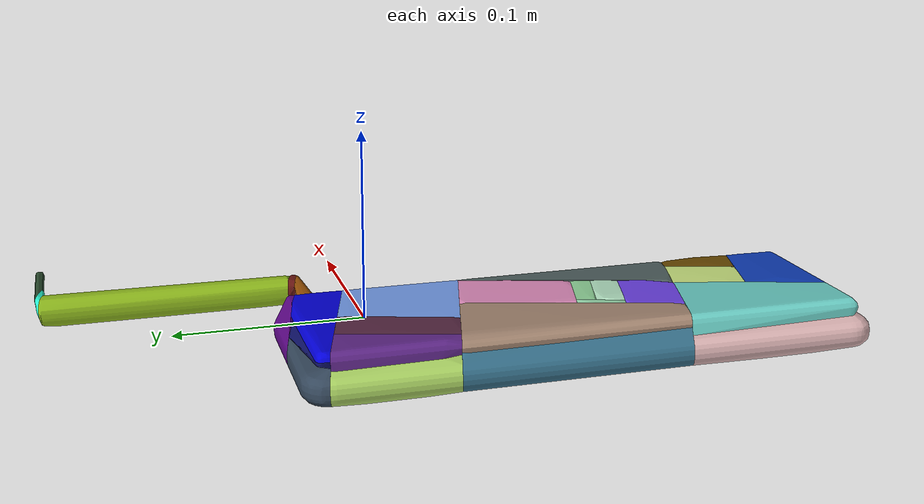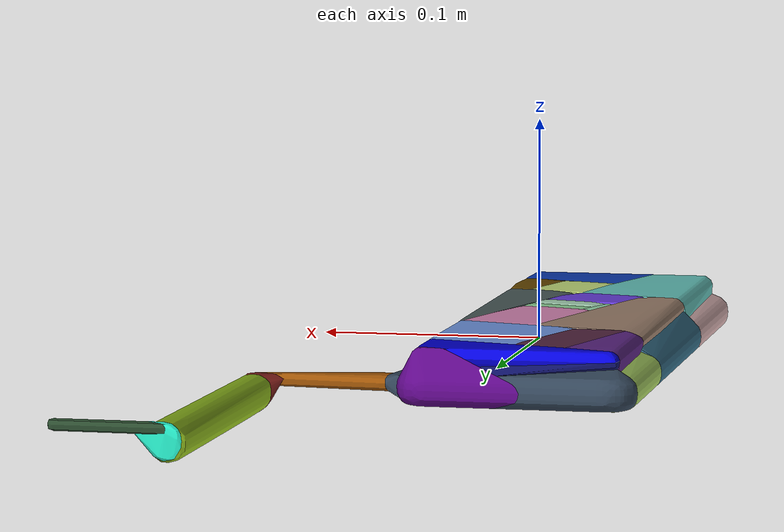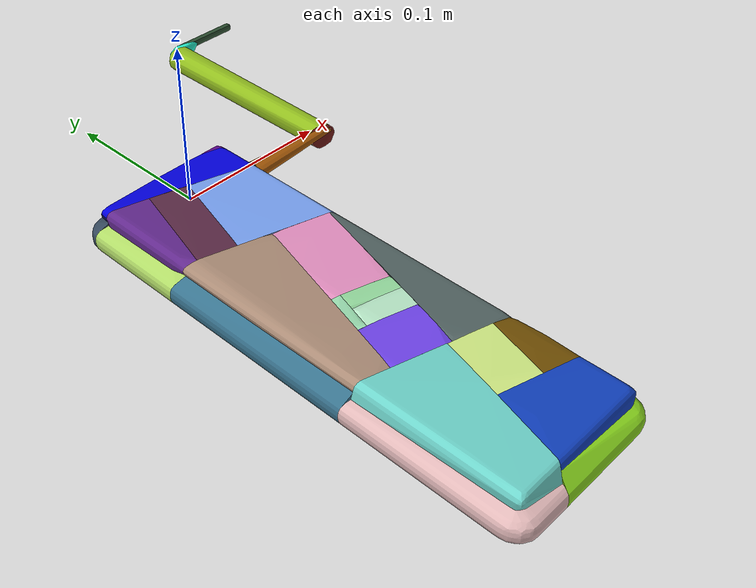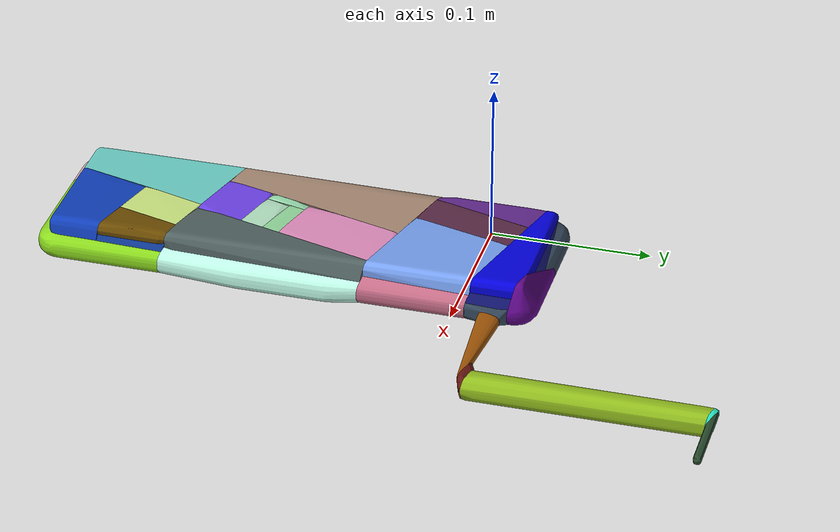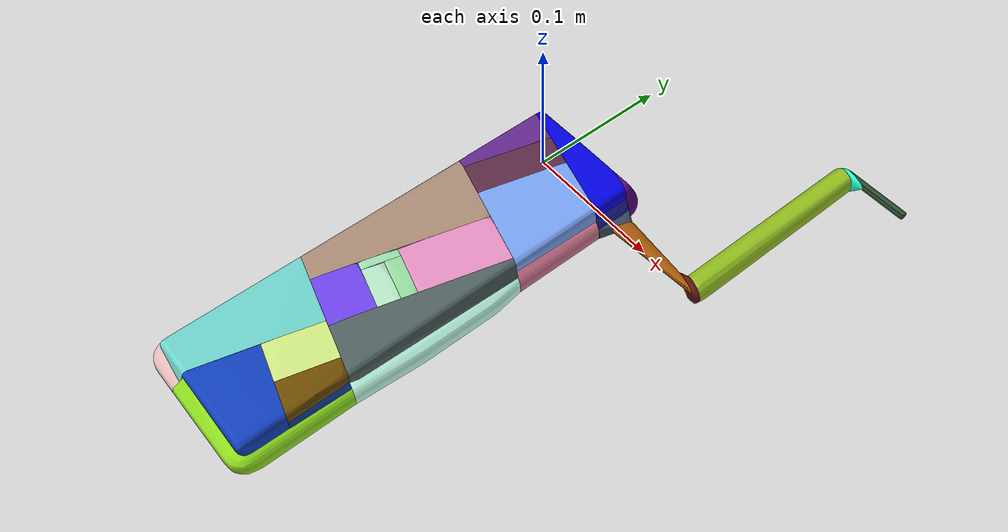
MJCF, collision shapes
<mujoco model="keyboard_1">
  <default>
    <default class="visual">
      <geom group="2" type="mesh" contype="0" conaffinity="0"/>
    </default>
    <default class="collision">
      <geom group="3" type="mesh"/>
    </default>
  </default>
  <asset>
    <material name="BLACK" specular="0.5" shininess="0.25" rgba="0.000000 0.000000 0.000000 1.000000"/>
    <material name="DARKORANGE2" specular="0.5" shininess="0.25" rgba="0.723055 0.201556 0.004777 1.000000"/>
    <material name="GRAY2" specular="0.5" shininess="0.25" rgba="0.001518 0.001518 0.001518 1.000000"/>
    <material name="GRAY38" specular="0.5" shininess="0.25" rgba="0.102242 0.122139 0.132868 1.000000"/>
    <material name="GRAY50" specular="0.5" shininess="0.25" rgba="0.215861 0.215861 0.215861 1.000000"/>
    <material name="GRAY61" specular="0.5" shininess="0.25" rgba="0.327778 0.327778 0.327778 1.000000"/>
    <material name="GRAY94" specular="0.5" shininess="0.25" rgba="0.838799 0.879622 0.863157 1.000000"/>
    <material name="MATRAGRAY" specular="0.5" shininess="0.25" rgba="0.318547 0.318547 0.318547 1.000000"/>
    <material name="WHITESMOKE" specular="0.5" shininess="0.25" rgba="0.904661 0.904661 0.904661 1.000000"/>
    <material name="YELLOW" specular="0.5" shininess="0.25" rgba="1.000000 1.000000 0.000000 1.000000"/>
    <mesh file="keyboard_1_0.obj"/>
    <mesh file="keyboard_1_1.obj"/>
    <mesh file="keyboard_1_2.obj"/>
    <mesh file="keyboard_1_3.obj"/>
    <mesh file="keyboard_1_4.obj"/>
    <mesh file="keyboard_1_5.obj"/>
    <mesh file="keyboard_1_6.obj"/>
    <mesh file="keyboard_1_7.obj"/>
    <mesh file="keyboard_1_8.obj"/>
    <mesh file="keyboard_1_9.obj"/>
    <mesh file="keyboard_1_collision_0.obj"/>
    <mesh file="keyboard_1_collision_1.obj"/>
    <mesh file="keyboard_1_collision_2.obj"/>
    <mesh file="keyboard_1_collision_3.obj"/>
    <mesh file="keyboard_1_collision_4.obj"/>
    <mesh file="keyboard_1_collision_5.obj"/>
    <mesh file="keyboard_1_collision_6.obj"/>
    <mesh file="keyboard_1_collision_7.obj"/>
    <mesh file="keyboard_1_collision_8.obj"/>
    <mesh file="keyboard_1_collision_9.obj"/>
    <mesh file="keyboard_1_collision_10.obj"/>
    <mesh file="keyboard_1_collision_11.obj"/>
    <mesh file="keyboard_1_collision_12.obj"/>
    <mesh file="keyboard_1_collision_13.obj"/>
    <mesh file="keyboard_1_collision_14.obj"/>
    <mesh file="keyboard_1_collision_15.obj"/>
    <mesh file="keyboard_1_collision_16.obj"/>
    <mesh file="keyboard_1_collision_17.obj"/>
    <mesh file="keyboard_1_collision_18.obj"/>
    <mesh file="keyboard_1_collision_19.obj"/>
    <mesh file="keyboard_1_collision_20.obj"/>
    <mesh file="keyboard_1_collision_21.obj"/>
    <mesh file="keyboard_1_collision_22.obj"/>
    <mesh file="keyboard_1_collision_23.obj"/>
    <mesh file="keyboard_1_collision_24.obj"/>
    <mesh file="keyboard_1_collision_25.obj"/>
    <mesh file="keyboard_1_collision_26.obj"/>
    <mesh file="keyboard_1_collision_27.obj"/>
    <mesh file="keyboard_1_collision_28.obj"/>
    <mesh file="keyboard_1_collision_29.obj"/>
    <mesh file="keyboard_1_collision_30.obj"/>
  </asset>
  <worldbody>
    <body name="keyboard_1">
      <geom mesh="keyboard_1_0" material="GRAY50" class="visual"/>
      <geom mesh="keyboard_1_1" material="GRAY2" class="visual"/>
      <geom mesh="keyboard_1_2" material="MATRAGRAY" class="visual"/>
      <geom mesh="keyboard_1_3" material="GRAY61" class="visual"/>
      <geom mesh="keyboard_1_4" material="DARKORANGE2" class="visual"/>
      <geom mesh="keyboard_1_5" material="GRAY94" class="visual"/>
      <geom mesh="keyboard_1_6" material="GRAY38" class="visual"/>
      <geom mesh="keyboard_1_7" material="YELLOW" class="visual"/>
      <geom mesh="keyboard_1_8" material="WHITESMOKE" class="visual"/>
      <geom mesh="keyboard_1_9" material="BLACK" class="visual"/>
      <geom mesh="keyboard_1_collision_0" rgba="0.37025280234571756 0.02541184622643322 0.5371683510211692 1" class="collision"/>
      <geom mesh="keyboard_1_collision_1" rgba="0.15359992214513096 0.9512203453893971 0.8092398641776433 1" class="collision"/>
      <geom mesh="keyboard_1_collision_2" rgba="0.1708922421505047 0.30104228942326283 0.18536506299126387 1" class="collision"/>
      <geom mesh="keyboard_1_collision_3" rgba="0.4096796159999905 0.08915837429298301 0.0742749781525942 1" class="collision"/>
      <geom mesh="keyboard_1_collision_4" rgba="0.63381945224242 0.338828167373711 0.02697345233460746 1" class="collision"/>
      <geom mesh="keyboard_1_collision_5" rgba="0.35528881901693476 0.16575012438670633 0.2734718148015105 1" class="collision"/>
      <geom mesh="keyboard_1_collision_6" rgba="0.876801131554526 0.7168720148763204 0.7174623738195887 1" class="collision"/>
      <geom mesh="keyboard_1_collision_7" rgba="0.05623586971925498 0.06840095557219117 0.41191760865487126 1" class="collision"/>
      <geom mesh="keyboard_1_collision_8" rgba="0.21799614204201956 0.4470577124646403 0.5537768150411897 1" class="collision"/>
      <geom mesh="keyboard_1_collision_9" rgba="0.010845586237483107 0.0018515170579075368 0.8784495422973788 1" class="collision"/>
      <geom mesh="keyboard_1_collision_10" rgba="0.666269762536608 0.5452294846804815 0.46026742964406187 1" class="collision"/>
      <geom mesh="keyboard_1_collision_11" rgba="0.5468240028116772 0.8512557041889841 0.11771991256623382 1" class="collision"/>
      <geom mesh="keyboard_1_collision_12" rgba="0.20544768968643967 0.2788943076711119 0.358279002656015 1" class="collision"/>
      <geom mesh="keyboard_1_collision_13" rgba="0.43895072828497794 0.26415193603665577 0.9286525503335852 1" class="collision"/>
      <geom mesh="keyboard_1_collision_14" rgba="0.469727866933052 0.6342088219152237 0.9500015288652965 1" class="collision"/>
      <geom mesh="keyboard_1_collision_15" rgba="0.7458747528187891 0.982305853800671 0.9034776078085492 1" class="collision"/>
      <geom mesh="keyboard_1_collision_16" rgba="0.38500272820605297 0.16004989936872038 0.5539142222868018 1" class="collision"/>
      <geom mesh="keyboard_1_collision_17" rgba="0.6862512007226008 0.8480870522993911 0.40013072616758605 1" class="collision"/>
      <geom mesh="keyboard_1_collision_18" rgba="0.31649700415475823 0.3835189383584414 0.3792351589158155 1" class="collision"/>
      <geom mesh="keyboard_1_collision_19" rgba="0.774874210677968 0.42587993021680814 0.5291726091680287 1" class="collision"/>
      <geom mesh="keyboard_1_collision_20" rgba="0.4253050605383226 0.8243464822068748 0.7884415164484475 1" class="collision"/>
      <geom mesh="keyboard_1_collision_21" rgba="0.06412029996287405 0.2524466104742549 0.743724660848963 1" class="collision"/>
      <geom mesh="keyboard_1_collision_22" rgba="0.7199197296213864 0.9075662749771233 0.7792430197466498 1" class="collision"/>
      <geom mesh="keyboard_1_collision_23" rgba="0.0521411652817142 0.22475282128082885 0.5778420882677087 1" class="collision"/>
      <geom mesh="keyboard_1_collision_24" rgba="0.8162209134772382 0.9195822243131945 0.5126038700519188 1" class="collision"/>
      <geom mesh="keyboard_1_collision_25" rgba="0.8962166132227063 0.5626388510910407 0.7563227712694878 1" class="collision"/>
      <geom mesh="keyboard_1_collision_26" rgba="0.5699735960165665 0.7397132500423549 0.11825098416909474 1" class="collision"/>
      <geom mesh="keyboard_1_collision_27" rgba="0.4347555264671078 0.3033872421563838 0.010820969341827191 1" class="collision"/>
      <geom mesh="keyboard_1_collision_28" rgba="0.6064563227095185 0.8722408020381571 0.6920670172442485 1" class="collision"/>
      <geom mesh="keyboard_1_collision_29" rgba="0.13251666494064618 0.6158750905776097 0.14443360712815145 1" class="collision"/>
      <geom mesh="keyboard_1_collision_30" rgba="0.5861819948915 0.8624429407180787 0.6221280746599763 1" class="collision"/>
    </body>
  </worldbody>
</mujoco>
